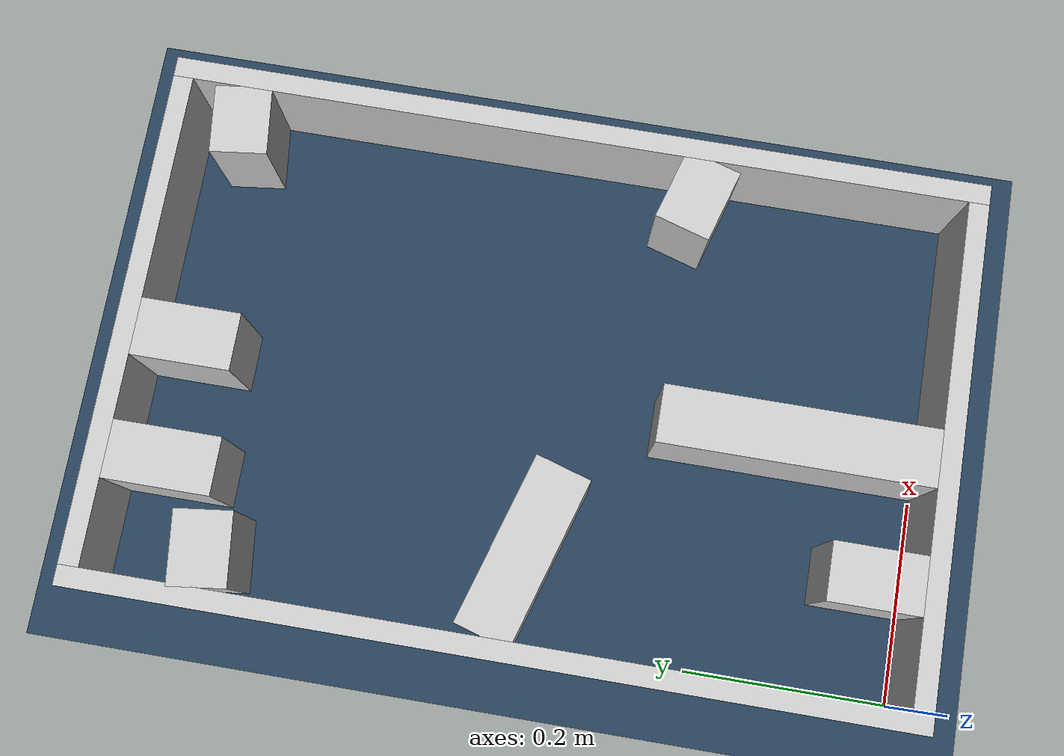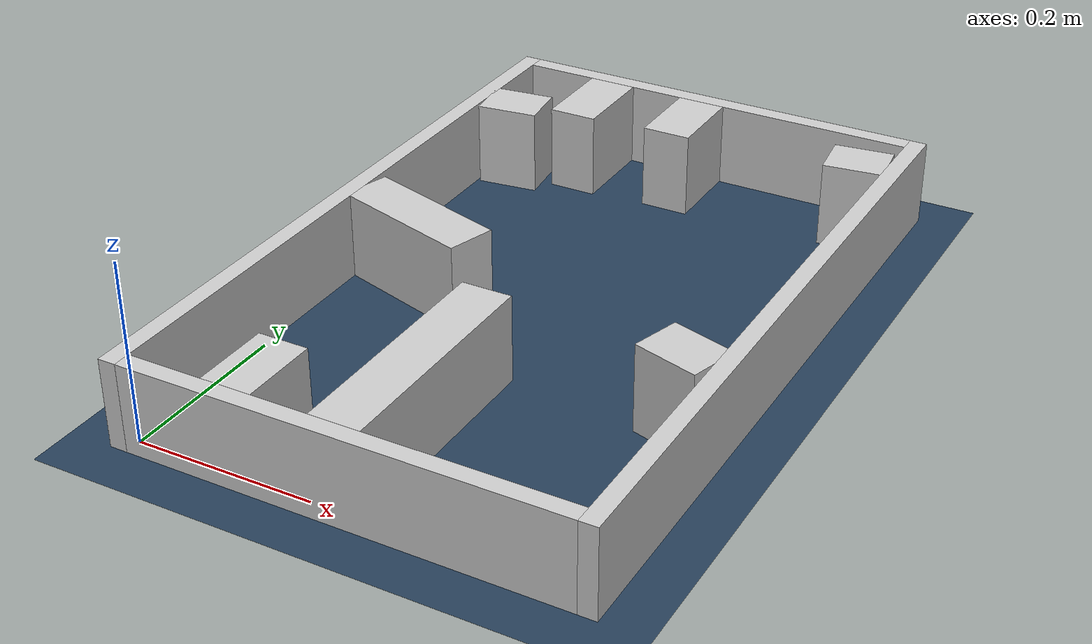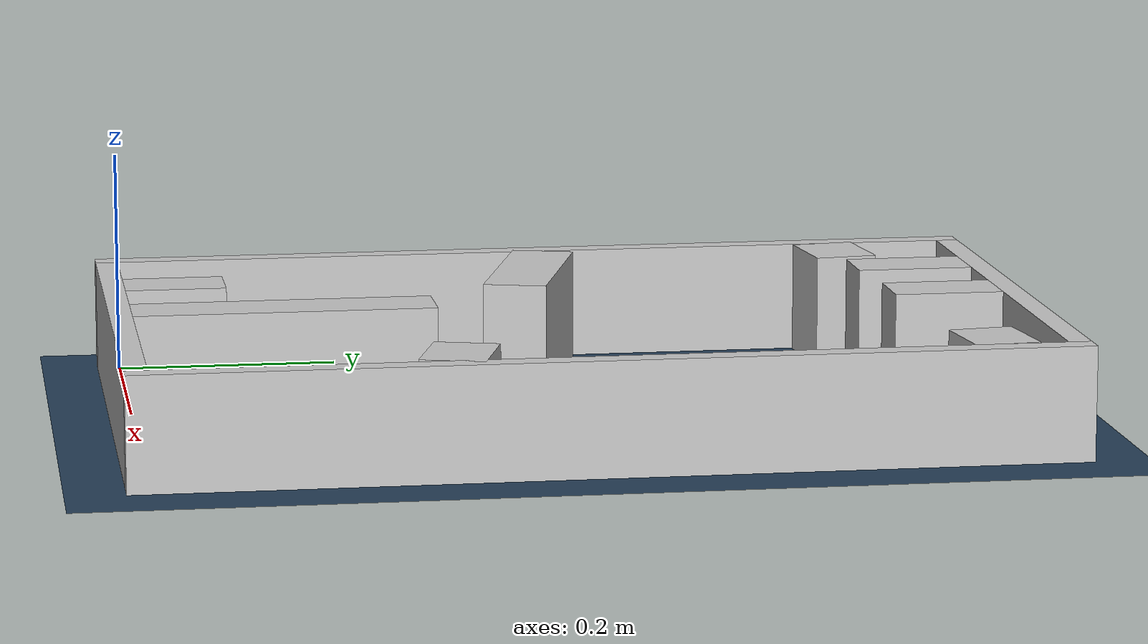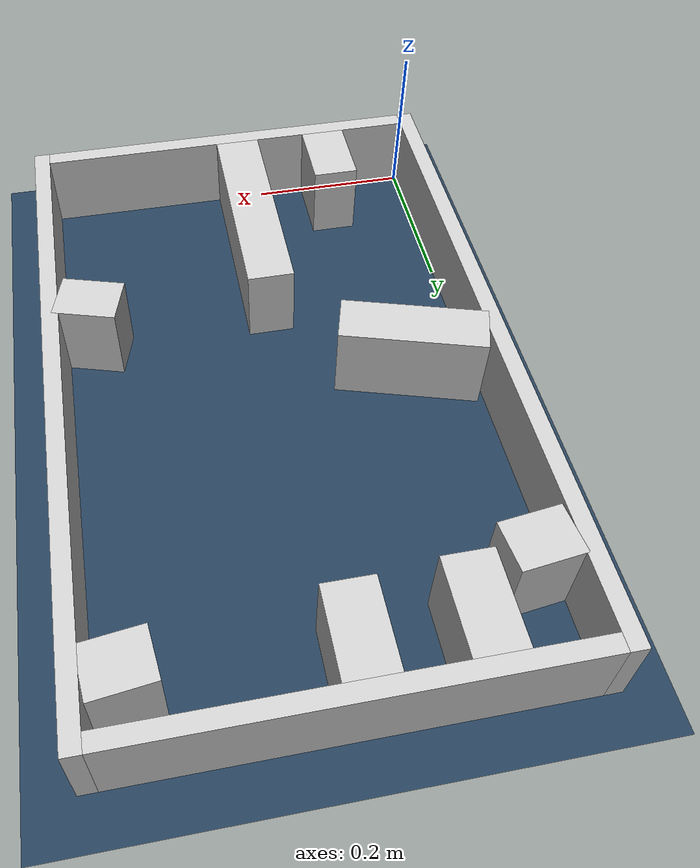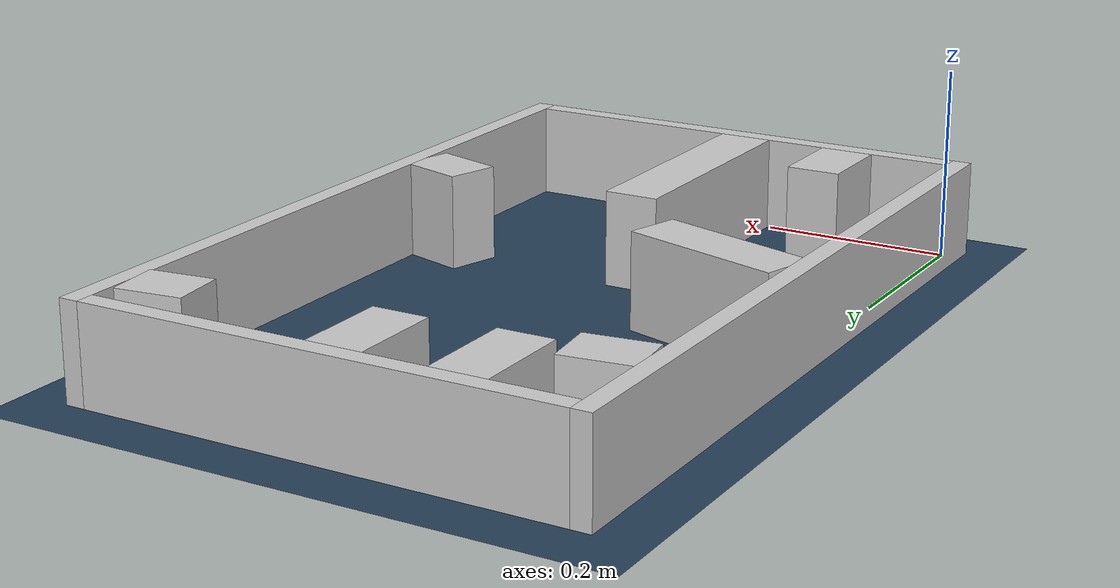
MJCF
<?xml version="1.0" ?>
<mujoco model="generated_real_template">
  <compiler angle="degree"/>
  <option timestep="0.002" integrator="implicitfast" iterations="100" cone="elliptic"/>
  <default>
    <geom density="1"/>
  </default>
  <asset>
    <texture builtin="gradient" height="3072" rgb1="0.3 0.5 0.7" rgb2="0 0 0" type="skybox" width="512"/>
    <texture builtin="checker" height="300" mark="edge" markrgb="0.8 0.8 0.8" name="groundplane" rgb1="0.2 0.3 0.4" rgb2="0.1 0.2 0.3" type="2d" width="300"/>
    <material name="groundplane" reflectance="0.2" texrepeat="5 5" texture="groundplane" texuniform="true"/>
  </asset>
  <worldbody>
    <light dir="0 0 -1" directional="true" pos="0 0 1.5"/>
    <geom name="floor" type="plane" condim="4" friction="0.5 0.005 0.001" material="groundplane" size="0 0 0.05"/>
    <body name="walls">
      <geom name="wall_boundary_left" type="box" condim="4" friction="1.0 0.005 0.0001" rgba="0.8 0.8 0.8 1" pos="-0.010000 0.387500 0.050000" euler="0 0 0.000000" size="0.010000 0.407500 0.050000"/>
      <geom name="wall_boundary_right" type="box" condim="4" friction="1.0 0.005 0.0001" rgba="0.8 0.8 0.8 1" pos="0.500000 0.387500 0.050000" euler="0 0 0.000000" size="0.010000 0.407500 0.050000"/>
      <geom name="wall_boundary_bottom" type="box" condim="4" friction="1.0 0.005 0.0001" rgba="0.8 0.8 0.8 1" pos="0.245000 -0.010000 0.050000" euler="0 0 0.000000" size="0.245000 0.010000 0.050000"/>
      <geom name="wall_boundary_top" type="box" condim="4" friction="1.0 0.005 0.0001" rgba="0.8 0.8 0.8 1" pos="0.245000 0.785000 0.050000" euler="0 0 0.000000" size="0.245000 0.010000 0.050000"/>
      <geom name="wall_inner_1_1" type="box" condim="4" friction="1.0 0.005 0.0001" rgba="0.8 0.8 0.8 1" pos="0.113065 0.045101 0.050000" euler="0 0 90.000000" size="0.045101 0.028500 0.050000"/>
      <geom name="wall_inner_1_2" type="box" condim="4" friction="1.0 0.005 0.0001" rgba="0.8 0.8 0.8 1" pos="0.113065 0.722414 0.050000" euler="0 0 90.000000" size="0.052586 0.028500 0.050000"/>
      <geom name="wall_inner_2_1" type="box" condim="4" friction="1.0 0.005 0.0001" rgba="0.8 0.8 0.8 1" pos="0.083339 0.372615 0.050000" euler="0 0 -16.619448" size="0.086972 0.028500 0.050000"/>
      <geom name="wall_inner_2_2" type="box" condim="4" friction="1.0 0.005 0.0001" rgba="0.8 0.8 0.8 1" pos="0.453699 0.262069 0.050000" euler="0 0 -16.619448" size="0.037884 0.028500 0.050000"/>
      <geom name="wall_inner_3_1" type="box" condim="4" friction="1.0 0.005 0.0001" rgba="0.8 0.8 0.8 1" pos="0.035983 0.668408 0.050000" euler="0 0 6.901081" size="0.036245 0.028500 0.050000"/>
      <geom name="wall_inner_3_2" type="box" condim="4" friction="1.0 0.005 0.0001" rgba="0.8 0.8 0.8 1" pos="0.455574 0.719192 0.050000" euler="0 0 6.901081" size="0.034677 0.028500 0.050000"/>
      <geom name="wall_inner_4_1" type="box" condim="4" friction="1.0 0.005 0.0001" rgba="0.8 0.8 0.8 1" pos="0.233385 0.133504 0.050000" euler="0 0 90.000000" size="0.133504 0.028500 0.050000"/>
      <geom name="wall_inner_4_2" type="box" condim="4" friction="1.0 0.005 0.0001" rgba="0.8 0.8 0.8 1" pos="0.233385 0.726058 0.050000" euler="0 0 90.000000" size="0.048942 0.028500 0.050000"/>
    </body>
  </worldbody>
</mujoco>
